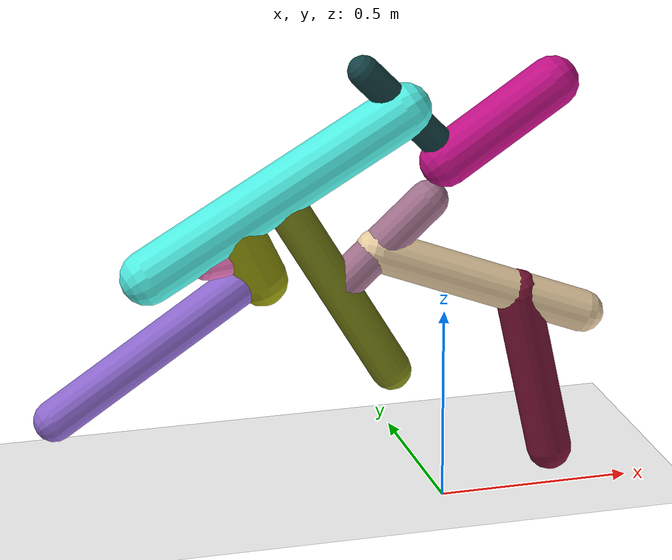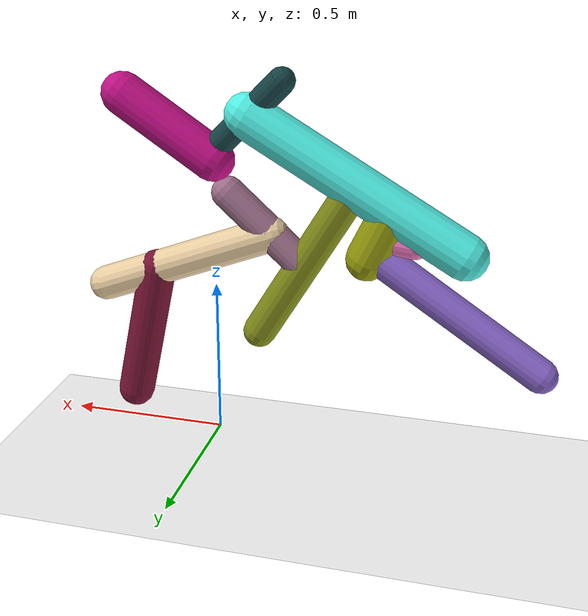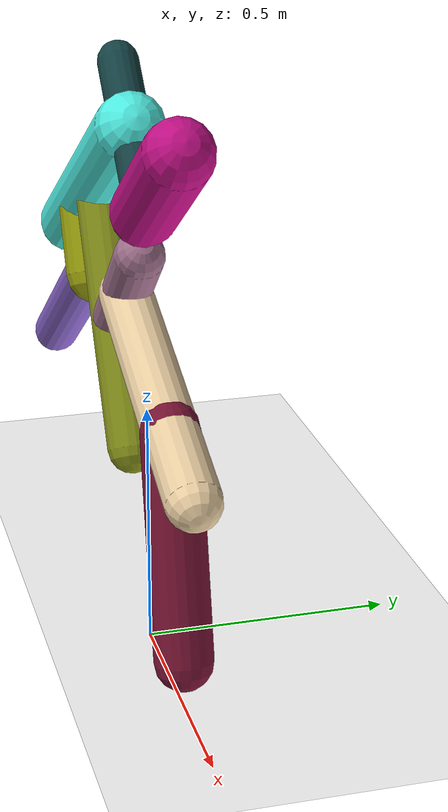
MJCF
<mujoco model="morphology">
  <option timestep="0.01"/>
  <default>
    <default class="/"/>
    <default class="0/"/>
    <default class="0/1/"/>
    <default class="0/1/2/"/>
    <default class="0/1/2/3/"/>
    <default class="0/1/2/3/4/"/>
    <default class="0/1/2/3/4/5/"/>
    <default class="0/1/2/3/4/5/6/"/>
    <default class="0/1/2/7/"/>
    <default class="0/1/2/7/8/"/>
    <default class="0/1/2/7/9/"/>
  </default>
  <asset>
    <texture name="texplane" type="2d" builtin="checker" rgb1="0.10000000000000001 0.20000000000000001 0.29999999999999999" rgb2="0.20000000000000001 0.29999999999999999 0.40000000000000002" width="300" height="300"/>
    <material name="MatPlane" class="/" texture="texplane" texrepeat="20 20" specular="1" shininess="1" reflectance="0.5"/>
  </asset>
  <worldbody>
    <light name="//unnamed_light_0" class="/" directional="true" pos="0 0 1.5" dir="0 0 -1.3" cutoff="100" exponent="1" diffuse="1 1 1" specular="0.10000000000000001 0.10000000000000001 0.10000000000000001"/>
    <geom name="ground" class="/" type="plane" size="15 15 0.5" material="MatPlane" rgba="1 1 1 1"/>
    <site name="body" class="/" size="9.9999999999999995e-07 9.9999999999999995e-07 9.9999999999999995e-07" pos="0 0 0.89940998554229734"/>
    <body pos="0 0 0.89940998554229734" name="0/">
      <joint name="0/rootx/" class="/" type="slide" axis="1 0 0" limited="false" stiffness="0" armature="0" damping="0"/>
      <joint name="0/rootz/" class="/" type="slide" axis="0 0 1" limited="false" stiffness="0" armature="0" damping="0"/>
      <joint name="0/rooty/" class="/" type="hinge" axis="0 1 0" limited="false" stiffness="0" armature="0" damping="0"/>
      <geom name="0/geom" class="0/" type="capsule" contype="1" conaffinity="1" condim="3" size="0.066103610973101995" rgba="0.76812342796106536 0.059125535946975893 0.52927744900504992 1" friction="0.59999999999999998 0.10000000000000001 0.10000000000000001" fromto="0 0 0 0.27636204820423327 0 0.18227547622769191"/>
      <site name="0/end0" class="0/" size="0.0050000000000000001" pos="0.27636204820423327 0 0.18227547622769191"/>
      <site name="0/attach1" class="0/" size="9.9999999999999995e-07 9.9999999999999995e-07 9.9999999999999995e-07" pos="0.016697302711927133 0 0.01101275961482699"/>
      <body pos="0.016697302711927133 0 0.01101275961482699" name="0/1/">
        <joint name="0/1/joint/" class="0/" type="hinge" axis="0 1 0" limited="true" stiffness="100" range="-32.201559511471395 32.201559511471395" armature="0.20000000000000001" damping="3.5"/>
        <geom name="0/1/geom" class="0/1/" type="capsule" contype="1" conaffinity="1" condim="3" size="0.040754233635258479" rgba="0.085258278486865291 0.2613234439441634 0.27145457055623912 1" friction="0.59999999999999998 0.10000000000000001 0.10000000000000001" fromto="0 0 0 -0.22796570812257499 0 0.23378148355566863"/>
        <site name="0/1/end1" class="0/1/" size="0.0050000000000000001" pos="-0.22796570812257499 0 0.23378148355566863"/>
        <site name="0/1/attach2" class="0/1/" size="9.9999999999999995e-07 9.9999999999999995e-07 9.9999999999999995e-07" pos="-0.12437497211003834 0 0.12754797963492598"/>
        <body pos="-0.12437497211003834 0 0.12754797963492598" name="0/1/2/">
          <joint name="0/1/2/joint/" class="0/1/" type="hinge" axis="0 1 0" limited="true" stiffness="100" range="-40.702427529682041 40.702427529682041" armature="0.20000000000000001" damping="3.5"/>
          <geom name="0/1/2/geom" class="0/1/2/" type="capsule" contype="1" conaffinity="1" condim="3" size="0.069545358370477345" rgba="0.32031106964394751 0.95053585696373866 0.90806925756696599 1" friction="0.59999999999999998 0.10000000000000001 0.10000000000000001" fromto="0 0 0 -0.6520824978493498 0 -0.37472931938590348"/>
          <site name="0/1/2/end2" class="0/1/2/" size="0.0050000000000000001" pos="-0.6520824978493498 0 -0.37472931938590348"/>
          <site name="0/1/2/attach3" class="0/1/2/" size="9.9999999999999995e-07 9.9999999999999995e-07 9.9999999999999995e-07" pos="-0.32436671905951292 0 -0.18640236513860767"/>
          <body pos="-0.32436671905951292 0 -0.18640236513860767" name="0/1/2/3/">
            <joint name="0/1/2/3/joint/" class="0/1/2/" type="hinge" axis="0 1 0" limited="true" stiffness="100" range="-67.25198801845724 67.25198801845724" armature="0.20000000000000001" damping="3.5"/>
            <geom name="0/1/2/3/geom" class="0/1/2/3/" type="capsule" contype="1" conaffinity="1" condim="3" size="0.051585141152261184" rgba="0.51905056260633908 0.56135583274915191 0.097703679248103303 1" friction="0.59999999999999998 0.10000000000000001 0.10000000000000001" fromto="0 0 0 0.29360823577365958 0 -0.49345391259600213"/>
            <site name="0/1/2/3/end3" class="0/1/2/3/" size="0.0050000000000000001" pos="0.29360823577365958 0 -0.49345391259600213"/>
            <site name="0/1/2/3/attach4" class="0/1/2/3/" size="9.9999999999999995e-07 9.9999999999999995e-07 9.9999999999999995e-07" pos="0.15487359486475313 0 -0.26028895661746509"/>
            <body pos="0.15487359486475313 0 -0.26028895661746509" name="0/1/2/3/4/">
              <joint name="0/1/2/3/4/joint/" class="0/1/2/3/" type="hinge" axis="0 1 0" limited="true" stiffness="100" range="-49.282880905405328 49.282880905405328" armature="0.20000000000000001" damping="3.5"/>
              <geom name="0/1/2/3/4/geom" class="0/1/2/3/4/" type="capsule" contype="1" conaffinity="1" condim="3" size="0.050392866519583655" rgba="0.63331880780148475 0.44492279411223101 0.5552491301752176 1" friction="0.59999999999999998 0.10000000000000001 0.10000000000000001" fromto="0 0 0 0.23370654624693721 0 0.21040344089518581"/>
              <site name="0/1/2/3/4/end4" class="0/1/2/3/4/" size="0.0050000000000000001" pos="0.23370654624693721 0 0.21040344089518581"/>
              <site name="0/1/2/3/4/attach5" class="0/1/2/3/4/" size="9.9999999999999995e-07 9.9999999999999995e-07 9.9999999999999995e-07" pos="0.10003165065372931 0 0.090057398194277744"/>
              <body pos="0.10003165065372931 0 0.090057398194277744" name="0/1/2/3/4/5/">
                <geom name="0/1/2/3/4/5/geom" class="0/1/2/3/4/5/" type="capsule" contype="1" conaffinity="1" condim="3" size="0.054345227947631219" rgba="0.92597486441339716 0.81792077859053525 0.64551551600665902 1" friction="0.59999999999999998 0.10000000000000001 0.10000000000000001" fromto="0 0 0 0.54678312172205068 0 -0.21397760035435243"/>
                <site name="0/1/2/3/4/5/end5" class="0/1/2/3/4/5/" size="0.0050000000000000001" pos="0.54678312172205068 0 -0.21397760035435243"/>
                <site name="0/1/2/3/4/5/attach6" class="0/1/2/3/4/5/" size="9.9999999999999995e-07 9.9999999999999995e-07 9.9999999999999995e-07" pos="0.37082678767833593 0 -0.14511901158291238"/>
                <body pos="0.37082678767833593 0 -0.14511901158291238" name="0/1/2/3/4/5/6/">
                  <joint name="0/1/2/3/4/5/6/joint/" class="0/1/2/3/4/5/" type="hinge" axis="0 1 0" limited="true" stiffness="100" range="-54.590422755887644 54.590422755887644" armature="0.20000000000000001" damping="3.5"/>
                  <geom name="0/1/2/3/4/5/6/geom" class="0/1/2/3/4/5/6/" type="capsule" contype="1" conaffinity="1" condim="3" size="0.057941335690371479" rgba="0.47657379206862627 0.079166204316187594 0.2077866660621579 1" friction="0.59999999999999998 0.10000000000000001 0.10000000000000001" fromto="0 0 0 0.094939872237135292 0 -0.43621779423709173"/>
                  <site name="0/1/2/3/4/5/6/end6" class="0/1/2/3/4/5/6/" size="0.0050000000000000001" pos="0.094939872237135292 0 -0.43621779423709173"/>
                </body>
              </body>
            </body>
          </body>
          <site name="0/1/2/attach7" class="0/1/2/" size="9.9999999999999995e-07 9.9999999999999995e-07 9.9999999999999995e-07" pos="-0.43887115261360143 0 -0.25220411352766664"/>
          <body pos="-0.43887115261360143 0 -0.25220411352766664" name="0/1/2/7/">
            <joint name="0/1/2/7/joint/" class="0/1/2/" type="hinge" axis="0 1 0" limited="true" stiffness="100" range="-56.996470599201785 56.996470599201785" armature="0.20000000000000001" damping="3.5"/>
            <geom name="0/1/2/7/geom" class="0/1/2/7/" type="capsule" contype="1" conaffinity="1" condim="3" size="0.065678791150032709" rgba="0.60728091237020576 0.63008504761734641 0.052354066198764482 1" friction="0.59999999999999998 0.10000000000000001 0.10000000000000001" fromto="0 0 0 0.074055032728690962 0 -0.15608743539382286"/>
            <site name="0/1/2/7/end7" class="0/1/2/7/" size="0.0050000000000000001" pos="0.074055032728690962 0 -0.15608743539382286"/>
            <site name="0/1/2/7/attach8" class="0/1/2/7/" size="9.9999999999999995e-07 9.9999999999999995e-07 9.9999999999999995e-07" pos="0.040534415754988846 0 -0.085435287343164676"/>
            <body pos="0.040534415754988846 0 -0.085435287343164676" name="0/1/2/7/8/">
              <joint name="0/1/2/7/8/joint/" class="0/1/2/7/" type="hinge" axis="0 1 0" limited="true" stiffness="100" range="-43.961727448753052 43.961727448753052" armature="0.20000000000000001" damping="3.5"/>
              <geom name="0/1/2/7/8/geom" class="0/1/2/7/8/" type="capsule" contype="1" conaffinity="1" condim="3" size="0.044461869796713745" rgba="0.95087187859027567 0.47697972847068149 0.75705359599825084 1" friction="0.59999999999999998 0.10000000000000001 0.10000000000000001" fromto="0 0 0 -0.10673908104880581 0 -0.012107541004629629"/>
              <site name="0/1/2/7/8/end8" class="0/1/2/7/8/" size="0.0050000000000000001" pos="-0.10673908104880581 0 -0.012107541004629629"/>
            </body>
            <site name="0/1/2/7/attach9" class="0/1/2/7/" size="9.9999999999999995e-07 9.9999999999999995e-07 9.9999999999999995e-07" pos="0.062940778125197161 0 -0.13266167439620155"/>
            <body pos="0.062940778125197161 0 -0.13266167439620155" name="0/1/2/7/9/">
              <joint name="0/1/2/7/9/joint/" class="0/1/2/7/" type="hinge" axis="0 1 0" limited="true" stiffness="100" range="-65.729996821329877 65.729996821329877" armature="0.20000000000000001" damping="3.5"/>
              <geom name="0/1/2/7/9/geom" class="0/1/2/7/9/" type="capsule" contype="1" conaffinity="1" condim="3" size="0.052629397858782942" rgba="0.55371483808198596 0.41141631752485197 0.81415383341964631 1" friction="0.59999999999999998 0.10000000000000001 0.10000000000000001" fromto="0 0 0 -0.51786674873279037 0 -0.34101588421234402"/>
              <site name="0/1/2/7/9/end9" class="0/1/2/7/9/" size="0.0050000000000000001" pos="-0.51786674873279037 0 -0.34101588421234402"/>
            </body>
          </body>
        </body>
      </body>
      <camera name="0/side" class="0/" mode="trackcom" pos="0.40000000000000002 -4 0.20000000000000001" quat="0.70699999999999996 0.70699999999999996 0 0"/>
    </body>
  </worldbody>
  <actuator>
    <motor name="0/1/motor" class="0/1/" ctrllimited="true" ctrlrange="-1 1" gear="78" joint="0/1/joint/"/>
    <motor name="0/1/2/motor" class="0/1/2/" ctrllimited="true" ctrlrange="-1 1" gear="51" joint="0/1/2/joint/"/>
    <motor name="0/1/2/3/motor" class="0/1/2/3/" ctrllimited="true" ctrlrange="-1 1" gear="54" joint="0/1/2/3/joint/"/>
    <motor name="0/1/2/3/4/motor" class="0/1/2/3/4/" ctrllimited="true" ctrlrange="-1 1" gear="67" joint="0/1/2/3/4/joint/"/>
    <motor name="0/1/2/3/4/5/6/motor" class="0/1/2/3/4/5/6/" ctrllimited="true" ctrlrange="-1 1" gear="52" joint="0/1/2/3/4/5/6/joint/"/>
    <motor name="0/1/2/7/motor" class="0/1/2/7/" ctrllimited="true" ctrlrange="-1 1" gear="83" joint="0/1/2/7/joint/"/>
    <motor name="0/1/2/7/8/motor" class="0/1/2/7/8/" ctrllimited="true" ctrlrange="-1 1" gear="66" joint="0/1/2/7/8/joint/"/>
    <motor name="0/1/2/7/9/motor" class="0/1/2/7/9/" ctrllimited="true" ctrlrange="-1 1" gear="73" joint="0/1/2/7/9/joint/"/>
  </actuator>
  <sensor>
    <subtreelinvel name="velocity" body="0/"/>
  </sensor>
</mujoco>
